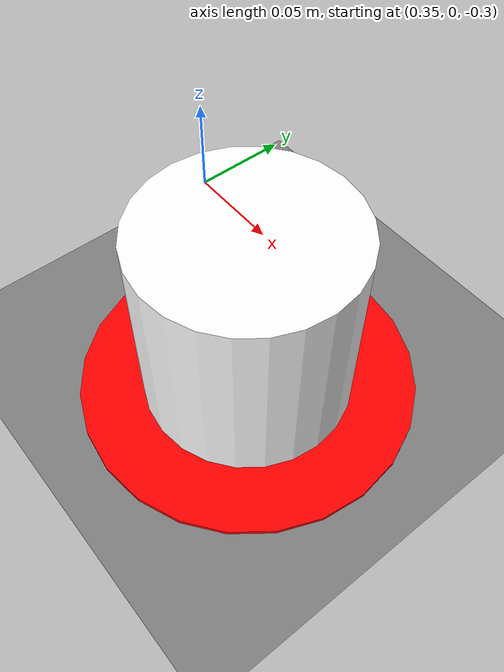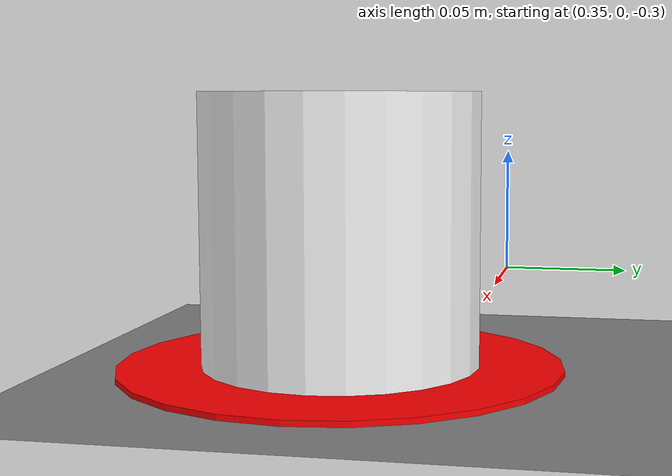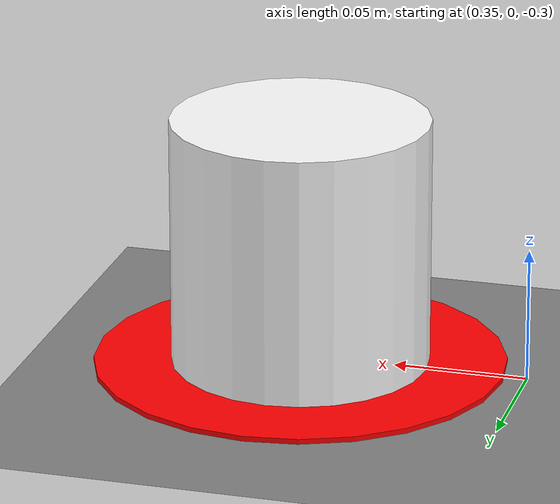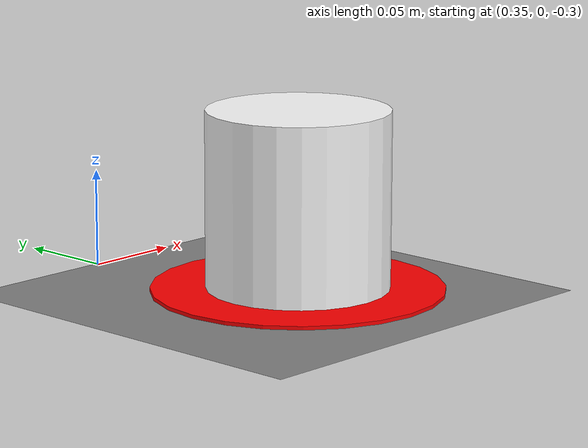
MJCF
<mujoco model="arm3d">
  <compiler inertiafromgeom="true" angle="radian" coordinate="local"/>
  <option timestep="0.01" gravity="0 0 0" iterations="20" integrator="Euler" />

  <default>
    <joint armature='0.04' damping="1" limited="true"/>
    <geom friction=".8 .1 .1" density="300" margin="0.002" condim="1" contype="0" conaffinity="0"/>
  </default>

  <worldbody>
    <light diffuse=".5 .5 .5" pos="0 0 3" dir="0 0 -1"/>
    <geom name="table" type="plane" pos="0 0.5 -0.325" size="1 1 0.1" contype="1" conaffinity="1"/>

    <body name="object" pos="0.45 -0.05 -0.275" >
      <geom rgba="1 1 1 0" type="sphere" size="0.05 0.05 0.05" density="0.00001" conaffinity="0"/>
      <geom rgba="1 1 1 1" type="cylinder" size="0.05 0.05 0.05" density="0.00001" contype="1" conaffinity="0"/>
      <joint name="obj_slidey" type="slide" pos="0 0 0" axis="0 1 0" range="-10.3213 10.3" damping="0.5"/>
      <joint name="obj_slidex" type="slide" pos="0 0 0" axis="1 0 0" range="-10.3213 10.3" damping="0.5"/>
    </body>

    <body name="goal" pos="0.45 -0.05 -0.3230">
      <geom rgba="1 0 0 1" type="cylinder" size="0.08 0.001 0.1" density='0.00001' contype="0" conaffinity="0"/>
      <joint name="goal_slidey" type="slide" pos="0 0 0" axis="0 1 0" range="-10.3213 10.3" damping="0.5"/>
      <joint name="goal_slidex" type="slide" pos="0 0 0" axis="1 0 0" range="-10.3213 10.3" damping="0.5"/>
    </body>
  </worldbody>

  <actuator>
    <motor joint="r_shoulder_pan_joint" ctrlrange="-2.0 2.0" ctrllimited="true" />
    <motor joint="r_shoulder_lift_joint" ctrlrange="-2.0 2.0" ctrllimited="true" />
    <motor joint="r_upper_arm_roll_joint" ctrlrange="-2.0 2.0" ctrllimited="true" />
    <motor joint="r_elbow_flex_joint" ctrlrange="-2.0 2.0" ctrllimited="true" />
    <motor joint="r_forearm_roll_joint" ctrlrange="-2.0 2.0" ctrllimited="true" />
    <motor joint="r_wrist_flex_joint" ctrlrange="-2.0 2.0" ctrllimited="true" />
    <motor joint="r_wrist_roll_joint" ctrlrange="-2.0 2.0" ctrllimited="true"/>
  </actuator>
</mujoco>
